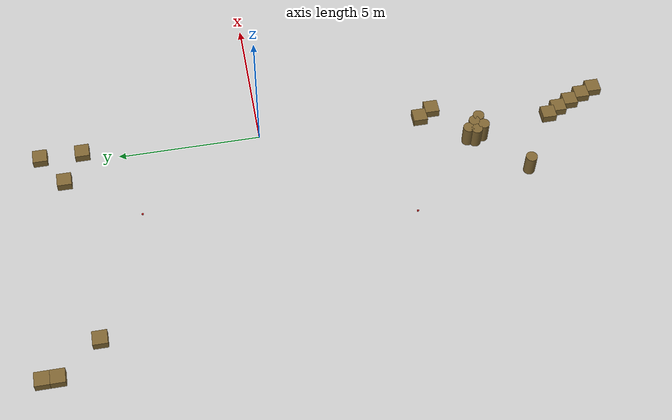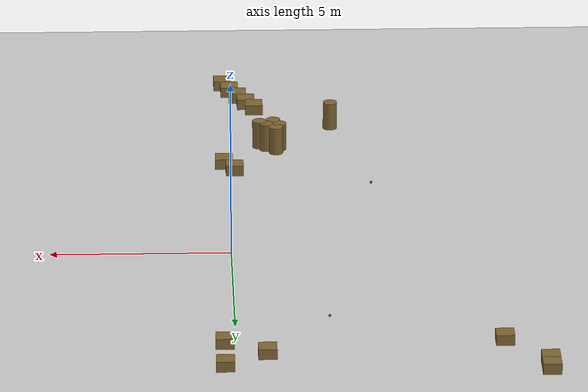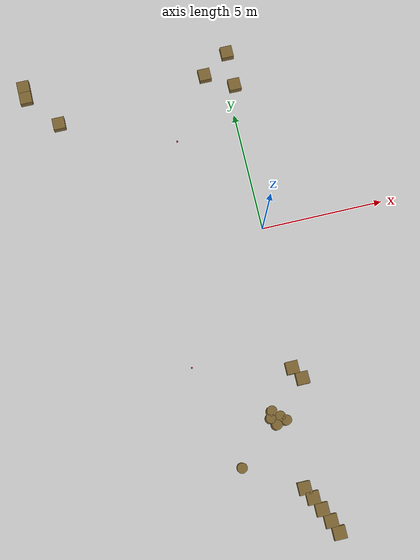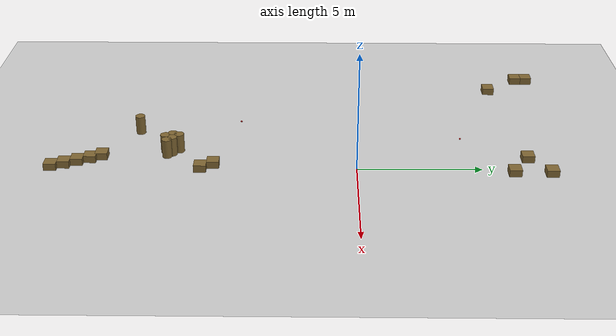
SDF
<sdf version="1.6">
 <world name="default">
  <model name="ground_plane">
   <static>1</static>
   <link name="link">
    <collision name="collision">
     <geometry><plane><normal>0 0 1</normal><size>100 100</size></plane></geometry>
     <surface><friction><ode><mu>100</mu><mu2>50</mu2></ode></friction></surface>
    </collision>
    <visual name="visual">
     <cast_shadows>0</cast_shadows>
     <geometry><plane><normal>0 0 1</normal><size>100 100</size></plane></geometry>
     <material>
      <script><uri>file://media/materials/scripts/gazebo.material</uri><name>Gazebo/Grey</name></script>
     </material>
    </visual>
   </link>
  </model>
  <model name="mini_box_clone_clone_0">
   <link name="link">
    <inertial>
     <mass>1</mass>
     <inertia>
      <ixx>0.166667</ixx>
      <ixy>0</ixy>
      <ixz>0</ixz>
      <iyy>0.166667</iyy>
      <iyz>0</iyz>
      <izz>0.166667</izz>
     </inertia>
    </inertial>
    <visual name="visual">
     <geometry><box><size>0.5 0.5 0.3</size></box></geometry>
     <material>
      <script><name>Gazebo/Grey</name><uri>file://media/materials/scripts/gazebo.material</uri></script>
      <shader type="vertex"><normal_map>__default__</normal_map></shader>
      <ambient>0.5 0.4 0.2 1</ambient>
      <diffuse>0.7 0.7 0.7 1</diffuse>
      <specular>0.01 0.01 0.01 1</specular>
      <emissive>0 0 0 1</emissive>
     </material>
    </visual>
    <collision name="collision">
     <geometry><box><size>0.5 0.5 0.3</size></box></geometry>
     <surface>
      <friction>
       <ode><mu>1</mu><mu2>1</mu2><fdir1>0 0 0</fdir1><slip1>0</slip1><slip2>0</slip2></ode>
       <torsional>
        <coefficient>1</coefficient>
        <patch_radius>0</patch_radius>
        <surface_radius>0</surface_radius>
        <use_patch_radius>1</use_patch_radius>
        <ode><slip>0</slip></ode>
       </torsional>
      </friction>
      <bounce><restitution_coefficient>0</restitution_coefficient><threshold>1e+06</threshold></bounce>
      <contact>
       <collide_without_contact>0</collide_without_contact>
       <collide_without_contact_bitmask>1</collide_without_contact_bitmask>
       <collide_bitmask>1</collide_bitmask>
       <ode>
        <soft_cfm>0</soft_cfm>
        <soft_erp>0.2</soft_erp>
        <kp>1e+13</kp>
        <kd>1</kd>
        <max_vel>0.01</max_vel>
        <min_depth>0</min_depth>
       </ode>
       <bullet>
        <split_impulse>1</split_impulse>
        <split_impulse_penetration_threshold>-0.01</split_impulse_penetration_threshold>
        <soft_cfm>0</soft_cfm>
        <soft_erp>0.2</soft_erp>
        <kp>1e+13</kp>
        <kd>1</kd>
       </bullet>
      </contact>
     </surface>
    </collision>
   </link>
   <static>1</static>
   <pose>0.311896 7.72531 0.15 0 -0 0</pose>
  </model>
  <model name="mini_box_clone_clone_2">
   <link name="link">
    <inertial>
     <mass>1</mass>
     <inertia>
      <ixx>0.166667</ixx>
      <ixy>0</ixy>
      <ixz>0</ixz>
      <iyy>0.166667</iyy>
      <iyz>0</iyz>
      <izz>0.166667</izz>
     </inertia>
    </inertial>
    <visual name="visual">
     <geometry><box><size>0.5 0.5 0.3</size></box></geometry>
     <material>
      <script><name>Gazebo/Grey</name><uri>file://media/materials/scripts/gazebo.material</uri></script>
      <shader type="vertex"><normal_map>__default__</normal_map></shader>
      <ambient>0.5 0.4 0.2 1</ambient>
      <diffuse>0.7 0.7 0.7 1</diffuse>
      <specular>0.01 0.01 0.01 1</specular>
      <emissive>0 0 0 1</emissive>
     </material>
    </visual>
    <collision name="collision">
     <geometry><box><size>0.5 0.5 0.3</size></box></geometry>
     <surface>
      <friction>
       <ode><mu>1</mu><mu2>1</mu2><fdir1>0 0 0</fdir1><slip1>0</slip1><slip2>0</slip2></ode>
       <torsional>
        <coefficient>1</coefficient>
        <patch_radius>0</patch_radius>
        <surface_radius>0</surface_radius>
        <use_patch_radius>1</use_patch_radius>
        <ode><slip>0</slip></ode>
       </torsional>
      </friction>
      <bounce><restitution_coefficient>0</restitution_coefficient><threshold>1e+06</threshold></bounce>
      <contact>
       <collide_without_contact>0</collide_without_contact>
       <collide_without_contact_bitmask>1</collide_without_contact_bitmask>
       <collide_bitmask>1</collide_bitmask>
       <ode>
        <soft_cfm>0</soft_cfm>
        <soft_erp>0.2</soft_erp>
        <kp>1e+13</kp>
        <kd>1</kd>
        <max_vel>0.01</max_vel>
        <min_depth>0</min_depth>
       </ode>
       <bullet>
        <split_impulse>1</split_impulse>
        <split_impulse_penetration_threshold>-0.01</split_impulse_penetration_threshold>
        <soft_cfm>0</soft_cfm>
        <soft_erp>0.2</soft_erp>
        <kp>1e+13</kp>
        <kd>1</kd>
       </bullet>
      </contact>
     </surface>
    </collision>
   </link>
   <static>1</static>
   <pose>-0.824684 6.94928 0.15 0 -0 0</pose>
  </model>
  <model name="mini_box_clone_clone_3">
   <link name="link">
    <inertial>
     <mass>1</mass>
     <inertia>
      <ixx>0.166667</ixx>
      <ixy>0</ixy>
      <ixz>0</ixz>
      <iyy>0.166667</iyy>
      <iyz>0</iyz>
      <izz>0.166667</izz>
     </inertia>
    </inertial>
    <visual name="visual">
     <geometry><box><size>0.5 0.5 0.3</size></box></geometry>
     <material>
      <script><name>Gazebo/Grey</name><uri>file://media/materials/scripts/gazebo.material</uri></script>
      <shader type="vertex"><normal_map>__default__</normal_map></shader>
      <ambient>0.5 0.4 0.2 1</ambient>
      <diffuse>0.7 0.7 0.7 1</diffuse>
      <specular>0.01 0.01 0.01 1</specular>
      <emissive>0 0 0 1</emissive>
     </material>
    </visual>
    <collision name="collision">
     <geometry><box><size>0.5 0.5 0.3</size></box></geometry>
     <surface>
      <friction>
       <ode><mu>1</mu><mu2>1</mu2><fdir1>0 0 0</fdir1><slip1>0</slip1><slip2>0</slip2></ode>
       <torsional>
        <coefficient>1</coefficient>
        <patch_radius>0</patch_radius>
        <surface_radius>0</surface_radius>
        <use_patch_radius>1</use_patch_radius>
        <ode><slip>0</slip></ode>
       </torsional>
      </friction>
      <bounce><restitution_coefficient>0</restitution_coefficient><threshold>1e+06</threshold></bounce>
      <contact>
       <collide_without_contact>0</collide_without_contact>
       <collide_without_contact_bitmask>1</collide_without_contact_bitmask>
       <collide_bitmask>1</collide_bitmask>
       <ode>
        <soft_cfm>0</soft_cfm>
        <soft_erp>0.2</soft_erp>
        <kp>1e+13</kp>
        <kd>1</kd>
        <max_vel>0.01</max_vel>
        <min_depth>0</min_depth>
       </ode>
       <bullet>
        <split_impulse>1</split_impulse>
        <split_impulse_penetration_threshold>-0.01</split_impulse_penetration_threshold>
        <soft_cfm>0</soft_cfm>
        <soft_erp>0.2</soft_erp>
        <kp>1e+13</kp>
        <kd>1</kd>
       </bullet>
      </contact>
     </surface>
    </collision>
   </link>
   <static>1</static>
   <pose>0.298756 6.25504 0.15 0 -0 0</pose>
  </model>
  <model name="mini_box_clone_clone_2_clone">
   <link name="link">
    <inertial>
     <mass>1</mass>
     <inertia>
      <ixx>0.166667</ixx>
      <ixy>0</ixy>
      <ixz>0</ixz>
      <iyy>0.166667</iyy>
      <iyz>0</iyz>
      <izz>0.166667</izz>
     </inertia>
    </inertial>
    <visual name="visual">
     <geometry><box><size>0.5 0.5 0.3</size></box></geometry>
     <material>
      <script><name>Gazebo/Grey</name><uri>file://media/materials/scripts/gazebo.material</uri></script>
      <shader type="vertex"><normal_map>__default__</normal_map></shader>
      <ambient>0.5 0.4 0.2 1</ambient>
      <diffuse>0.7 0.7 0.7 1</diffuse>
      <specular>0.01 0.01 0.01 1</specular>
      <emissive>0 0 0 1</emissive>
     </material>
    </visual>
    <collision name="collision">
     <geometry><box><size>0.5 0.5 0.3</size></box></geometry>
     <surface>
      <friction>
       <ode><mu>1</mu><mu2>1</mu2><fdir1>0 0 0</fdir1><slip1>0</slip1><slip2>0</slip2></ode>
       <torsional>
        <coefficient>1</coefficient>
        <patch_radius>0</patch_radius>
        <surface_radius>0</surface_radius>
        <use_patch_radius>1</use_patch_radius>
        <ode><slip>0</slip></ode>
       </torsional>
      </friction>
      <bounce><restitution_coefficient>0</restitution_coefficient><threshold>1e+06</threshold></bounce>
      <contact>
       <collide_without_contact>0</collide_without_contact>
       <collide_without_contact_bitmask>1</collide_without_contact_bitmask>
       <collide_bitmask>1</collide_bitmask>
       <ode>
        <soft_cfm>0</soft_cfm>
        <soft_erp>0.2</soft_erp>
        <kp>1e+13</kp>
        <kd>1</kd>
        <max_vel>0.01</max_vel>
        <min_depth>0</min_depth>
       </ode>
       <bullet>
        <split_impulse>1</split_impulse>
        <split_impulse_penetration_threshold>-0.01</split_impulse_penetration_threshold>
        <soft_cfm>0</soft_cfm>
        <soft_erp>0.2</soft_erp>
        <kp>1e+13</kp>
        <kd>1</kd>
       </bullet>
      </contact>
     </surface>
    </collision>
   </link>
   <static>1</static>
   <pose>-7.18928 6.21457 0.15 0 -0 0</pose>
  </model>
  <model name="target_1">
   <link name="link">
    <pose>0 0 0.0375 0 -0 0</pose>
    <inertial>
     <mass>0.1467</mass>
     <inertia>
      <ixx>8.25187e-05</ixx>
      <ixy>0</ixy>
      <ixz>0</ixz>
      <iyy>8.25187e-05</iyy>
      <iyz>0</iyz>
      <izz>8.25187e-05</izz>
     </inertia>
    </inertial>
    <velocity_decay><linear>0</linear><angular>0.005</angular></velocity_decay>
    <visual name="visual">
     <geometry><sphere><radius>0.0375</radius></sphere></geometry>
     <material>
      <script><uri>file://media/materials/scripts/gazebo.material</uri><name>Gazebo/Red</name></script>
      <shader type="pixel"/>
     </material>
    </visual>
    <collision name="collision">
     <geometry><sphere><radius>0.0375</radius></sphere></geometry>
     <surface>
      <friction>
       <ode><mu>1</mu><mu2>1</mu2><fdir1>0 0 0</fdir1><slip1>0</slip1><slip2>0</slip2></ode>
       <torsional>
        <coefficient>1</coefficient>
        <patch_radius>0</patch_radius>
        <surface_radius>0.01</surface_radius>
        <use_patch_radius>0</use_patch_radius>
        <ode><slip>0</slip></ode>
       </torsional>
      </friction>
      <bounce><restitution_coefficient>0</restitution_coefficient><threshold>1e+06</threshold></bounce>
      <contact>
       <collide_without_contact>0</collide_without_contact>
       <collide_without_contact_bitmask>1</collide_without_contact_bitmask>
       <collide_bitmask>1</collide_bitmask>
       <ode>
        <soft_cfm>0</soft_cfm>
        <soft_erp>0.2</soft_erp>
        <kp>100000</kp>
        <kd>100</kd>
        <max_vel>100</max_vel>
        <min_depth>0.001</min_depth>
       </ode>
       <bullet>
        <split_impulse>1</split_impulse>
        <split_impulse_penetration_threshold>-0.01</split_impulse_penetration_threshold>
        <soft_cfm>0</soft_cfm>
        <soft_erp>0.2</soft_erp>
        <kp>100000</kp>
        <kd>100</kd>
       </bullet>
      </contact>
     </surface>
    </collision>
   </link>
   <static>0</static>
   <pose>-2.56757 4.41406 -0.001014 0 -0 0</pose>
  </model>
  <model name="target_4">
   <link name="link">
    <pose>0 0 0.0375 0 -0 0</pose>
    <inertial>
     <mass>0.1467</mass>
     <inertia>
      <ixx>8.25187e-05</ixx>
      <ixy>0</ixy>
      <ixz>0</ixz>
      <iyy>8.25187e-05</iyy>
      <iyz>0</iyz>
      <izz>8.25187e-05</izz>
     </inertia>
    </inertial>
    <velocity_decay><linear>0</linear><angular>0.005</angular></velocity_decay>
    <visual name="visual">
     <geometry><sphere><radius>0.0375</radius></sphere></geometry>
     <material>
      <script><uri>file://media/materials/scripts/gazebo.material</uri><name>Gazebo/Red</name></script>
      <shader type="pixel"/>
     </material>
    </visual>
    <collision name="collision">
     <geometry><sphere><radius>0.0375</radius></sphere></geometry>
     <surface>
      <friction>
       <ode><mu>1</mu><mu2>1</mu2><fdir1>0 0 0</fdir1><slip1>0</slip1><slip2>0</slip2></ode>
       <torsional>
        <coefficient>1</coefficient>
        <patch_radius>0</patch_radius>
        <surface_radius>0.01</surface_radius>
        <use_patch_radius>0</use_patch_radius>
        <ode><slip>0</slip></ode>
       </torsional>
      </friction>
      <bounce><restitution_coefficient>0</restitution_coefficient><threshold>1e+06</threshold></bounce>
      <contact>
       <collide_without_contact>0</collide_without_contact>
       <collide_without_contact_bitmask>1</collide_without_contact_bitmask>
       <collide_bitmask>1</collide_bitmask>
       <ode>
        <soft_cfm>0</soft_cfm>
        <soft_erp>0.2</soft_erp>
        <kp>100000</kp>
        <kd>100</kd>
        <max_vel>100</max_vel>
        <min_depth>0.001</min_depth>
       </ode>
       <bullet>
        <split_impulse>1</split_impulse>
        <split_impulse_penetration_threshold>-0.01</split_impulse_penetration_threshold>
        <soft_cfm>0</soft_cfm>
        <soft_erp>0.2</soft_erp>
        <kp>100000</kp>
        <kd>100</kd>
       </bullet>
      </contact>
     </surface>
    </collision>
   </link>
   <static>0</static>
   <pose>-4.06717 -4.87999 -0.001014 0 -0 0</pose>
  </model>
  <model name="mini_box_clone_clone_3_clone_0_clone_0_clone_2">
   <link name="link">
    <inertial>
     <mass>1</mass>
     <inertia>
      <ixx>0.166667</ixx>
      <ixy>0</ixy>
      <ixz>0</ixz>
      <iyy>0.166667</iyy>
      <iyz>0</iyz>
      <izz>0.166667</izz>
     </inertia>
    </inertial>
    <visual name="visual">
     <geometry><box><size>0.5 0.5 0.3</size></box></geometry>
     <material>
      <script><name>Gazebo/Grey</name><uri>file://media/materials/scripts/gazebo.material</uri></script>
      <shader type="vertex"><normal_map>__default__</normal_map></shader>
      <ambient>0.5 0.4 0.2 1</ambient>
      <diffuse>0.7 0.7 0.7 1</diffuse>
      <specular>0.01 0.01 0.01 1</specular>
      <emissive>0 0 0 1</emissive>
     </material>
    </visual>
    <collision name="collision">
     <geometry><box><size>0.5 0.5 0.3</size></box></geometry>
     <surface>
      <friction>
       <ode><mu>1</mu><mu2>1</mu2><fdir1>0 0 0</fdir1><slip1>0</slip1><slip2>0</slip2></ode>
       <torsional>
        <coefficient>1</coefficient>
        <patch_radius>0</patch_radius>
        <surface_radius>0</surface_radius>
        <use_patch_radius>1</use_patch_radius>
        <ode><slip>0</slip></ode>
       </torsional>
      </friction>
      <bounce><restitution_coefficient>0</restitution_coefficient><threshold>1e+06</threshold></bounce>
      <contact>
       <collide_without_contact>0</collide_without_contact>
       <collide_without_contact_bitmask>1</collide_without_contact_bitmask>
       <collide_bitmask>1</collide_bitmask>
       <ode>
        <soft_cfm>0</soft_cfm>
        <soft_erp>0.2</soft_erp>
        <kp>1e+13</kp>
        <kd>1</kd>
        <max_vel>0.01</max_vel>
        <min_depth>0</min_depth>
       </ode>
       <bullet>
        <split_impulse>1</split_impulse>
        <split_impulse_penetration_threshold>-0.01</split_impulse_penetration_threshold>
        <soft_cfm>0</soft_cfm>
        <soft_erp>0.2</soft_erp>
        <kp>1e+13</kp>
        <kd>1</kd>
       </bullet>
      </contact>
     </surface>
    </collision>
   </link>
   <static>1</static>
   <pose>0.072178 -6.26601 0.15 0 -0 0</pose>
  </model>
  <model name="mini_box_clone_clone_3_clone_0_clone_0_clone_3">
   <link name="link">
    <inertial>
     <mass>1</mass>
     <inertia>
      <ixx>0.166667</ixx>
      <ixy>0</ixy>
      <ixz>0</ixz>
      <iyy>0.166667</iyy>
      <iyz>0</iyz>
      <izz>0.166667</izz>
     </inertia>
    </inertial>
    <visual name="visual">
     <geometry><box><size>0.5 0.5 0.3</size></box></geometry>
     <material>
      <script><name>Gazebo/Grey</name><uri>file://media/materials/scripts/gazebo.material</uri></script>
      <shader type="vertex"><normal_map>__default__</normal_map></shader>
      <ambient>0.5 0.4 0.2 1</ambient>
      <diffuse>0.7 0.7 0.7 1</diffuse>
      <specular>0.01 0.01 0.01 1</specular>
      <emissive>0 0 0 1</emissive>
     </material>
    </visual>
    <collision name="collision">
     <geometry><box><size>0.5 0.5 0.3</size></box></geometry>
     <surface>
      <friction>
       <ode><mu>1</mu><mu2>1</mu2><fdir1>0 0 0</fdir1><slip1>0</slip1><slip2>0</slip2></ode>
       <torsional>
        <coefficient>1</coefficient>
        <patch_radius>0</patch_radius>
        <surface_radius>0</surface_radius>
        <use_patch_radius>1</use_patch_radius>
        <ode><slip>0</slip></ode>
       </torsional>
      </friction>
      <bounce><restitution_coefficient>0</restitution_coefficient><threshold>1e+06</threshold></bounce>
      <contact>
       <collide_without_contact>0</collide_without_contact>
       <collide_without_contact_bitmask>1</collide_without_contact_bitmask>
       <collide_bitmask>1</collide_bitmask>
       <ode>
        <soft_cfm>0</soft_cfm>
        <soft_erp>0.2</soft_erp>
        <kp>1e+13</kp>
        <kd>1</kd>
        <max_vel>0.01</max_vel>
        <min_depth>0</min_depth>
       </ode>
       <bullet>
        <split_impulse>1</split_impulse>
        <split_impulse_penetration_threshold>-0.01</split_impulse_penetration_threshold>
        <soft_cfm>0</soft_cfm>
        <soft_erp>0.2</soft_erp>
        <kp>1e+13</kp>
        <kd>1</kd>
       </bullet>
      </contact>
     </surface>
    </collision>
   </link>
   <static>1</static>
   <pose>-0.221969 -5.77563 0.15 0 -0 0</pose>
  </model>
  <model name="mini_box_clone_clone_3_clone_0_clone_0_clone_4">
   <link name="link">
    <inertial>
     <mass>1</mass>
     <inertia>
      <ixx>0.166667</ixx>
      <ixy>0</ixy>
      <ixz>0</ixz>
      <iyy>0.166667</iyy>
      <iyz>0</iyz>
      <izz>0.166667</izz>
     </inertia>
    </inertial>
    <visual name="visual">
     <geometry><box><size>0.5 0.5 0.3</size></box></geometry>
     <material>
      <script><name>Gazebo/Grey</name><uri>file://media/materials/scripts/gazebo.material</uri></script>
      <shader type="vertex"><normal_map>__default__</normal_map></shader>
      <ambient>0.5 0.4 0.2 1</ambient>
      <diffuse>0.7 0.7 0.7 1</diffuse>
      <specular>0.01 0.01 0.01 1</specular>
      <emissive>0 0 0 1</emissive>
     </material>
    </visual>
    <collision name="collision">
     <geometry><box><size>0.5 0.5 0.3</size></box></geometry>
     <surface>
      <friction>
       <ode><mu>1</mu><mu2>1</mu2><fdir1>0 0 0</fdir1><slip1>0</slip1><slip2>0</slip2></ode>
       <torsional>
        <coefficient>1</coefficient>
        <patch_radius>0</patch_radius>
        <surface_radius>0</surface_radius>
        <use_patch_radius>1</use_patch_radius>
        <ode><slip>0</slip></ode>
       </torsional>
      </friction>
      <bounce><restitution_coefficient>0</restitution_coefficient><threshold>1e+06</threshold></bounce>
      <contact>
       <collide_without_contact>0</collide_without_contact>
       <collide_without_contact_bitmask>1</collide_without_contact_bitmask>
       <collide_bitmask>1</collide_bitmask>
       <ode>
        <soft_cfm>0</soft_cfm>
        <soft_erp>0.2</soft_erp>
        <kp>1e+13</kp>
        <kd>1</kd>
        <max_vel>0.01</max_vel>
        <min_depth>0</min_depth>
       </ode>
       <bullet>
        <split_impulse>1</split_impulse>
        <split_impulse_penetration_threshold>-0.01</split_impulse_penetration_threshold>
        <soft_cfm>0</soft_cfm>
        <soft_erp>0.2</soft_erp>
        <kp>1e+13</kp>
        <kd>1</kd>
       </bullet>
      </contact>
     </surface>
    </collision>
   </link>
   <static>1</static>
   <pose>-0.876616 -10.3621 0.15 0 -0 0</pose>
  </model>
  <model name="mini_box_clone_clone_3_clone_0_clone_0_clone_5">
   <link name="link">
    <inertial>
     <mass>1</mass>
     <inertia>
      <ixx>0.166667</ixx>
      <ixy>0</ixy>
      <ixz>0</ixz>
      <iyy>0.166667</iyy>
      <iyz>0</iyz>
      <izz>0.166667</izz>
     </inertia>
    </inertial>
    <visual name="visual">
     <geometry><box><size>0.5 0.5 0.3</size></box></geometry>
     <material>
      <script><name>Gazebo/Grey</name><uri>file://media/materials/scripts/gazebo.material</uri></script>
      <shader type="vertex"><normal_map>__default__</normal_map></shader>
      <ambient>0.5 0.4 0.2 1</ambient>
      <diffuse>0.7 0.7 0.7 1</diffuse>
      <specular>0.01 0.01 0.01 1</specular>
      <emissive>0 0 0 1</emissive>
     </material>
    </visual>
    <collision name="collision">
     <geometry><box><size>0.5 0.5 0.3</size></box></geometry>
     <surface>
      <friction>
       <ode><mu>1</mu><mu2>1</mu2><fdir1>0 0 0</fdir1><slip1>0</slip1><slip2>0</slip2></ode>
       <torsional>
        <coefficient>1</coefficient>
        <patch_radius>0</patch_radius>
        <surface_radius>0</surface_radius>
        <use_patch_radius>1</use_patch_radius>
        <ode><slip>0</slip></ode>
       </torsional>
      </friction>
      <bounce><restitution_coefficient>0</restitution_coefficient><threshold>1e+06</threshold></bounce>
      <contact>
       <collide_without_contact>0</collide_without_contact>
       <collide_without_contact_bitmask>1</collide_without_contact_bitmask>
       <collide_bitmask>1</collide_bitmask>
       <ode>
        <soft_cfm>0</soft_cfm>
        <soft_erp>0.2</soft_erp>
        <kp>1e+13</kp>
        <kd>1</kd>
        <max_vel>0.01</max_vel>
        <min_depth>0</min_depth>
       </ode>
       <bullet>
        <split_impulse>1</split_impulse>
        <split_impulse_penetration_threshold>-0.01</split_impulse_penetration_threshold>
        <soft_cfm>0</soft_cfm>
        <soft_erp>0.2</soft_erp>
        <kp>1e+13</kp>
        <kd>1</kd>
       </bullet>
      </contact>
     </surface>
    </collision>
   </link>
   <static>1</static>
   <pose>-0.64727 -10.7882 0.15 0 -0 0</pose>
  </model>
  <model name="mini_box_clone_clone_3_clone_0_clone_0_clone_6">
   <link name="link">
    <inertial>
     <mass>1</mass>
     <inertia>
      <ixx>0.166667</ixx>
      <ixy>0</ixy>
      <ixz>0</ixz>
      <iyy>0.166667</iyy>
      <iyz>0</iyz>
      <izz>0.166667</izz>
     </inertia>
    </inertial>
    <visual name="visual">
     <geometry><box><size>0.5 0.5 0.3</size></box></geometry>
     <material>
      <script><name>Gazebo/Grey</name><uri>file://media/materials/scripts/gazebo.material</uri></script>
      <shader type="vertex"><normal_map>__default__</normal_map></shader>
      <ambient>0.5 0.4 0.2 1</ambient>
      <diffuse>0.7 0.7 0.7 1</diffuse>
      <specular>0.01 0.01 0.01 1</specular>
      <emissive>0 0 0 1</emissive>
     </material>
    </visual>
    <collision name="collision">
     <geometry><box><size>0.5 0.5 0.3</size></box></geometry>
     <surface>
      <friction>
       <ode><mu>1</mu><mu2>1</mu2><fdir1>0 0 0</fdir1><slip1>0</slip1><slip2>0</slip2></ode>
       <torsional>
        <coefficient>1</coefficient>
        <patch_radius>0</patch_radius>
        <surface_radius>0</surface_radius>
        <use_patch_radius>1</use_patch_radius>
        <ode><slip>0</slip></ode>
       </torsional>
      </friction>
      <bounce><restitution_coefficient>0</restitution_coefficient><threshold>1e+06</threshold></bounce>
      <contact>
       <collide_without_contact>0</collide_without_contact>
       <collide_without_contact_bitmask>1</collide_without_contact_bitmask>
       <collide_bitmask>1</collide_bitmask>
       <ode>
        <soft_cfm>0</soft_cfm>
        <soft_erp>0.2</soft_erp>
        <kp>1e+13</kp>
        <kd>1</kd>
        <max_vel>0.01</max_vel>
        <min_depth>0</min_depth>
       </ode>
       <bullet>
        <split_impulse>1</split_impulse>
        <split_impulse_penetration_threshold>-0.01</split_impulse_penetration_threshold>
        <soft_cfm>0</soft_cfm>
        <soft_erp>0.2</soft_erp>
        <kp>1e+13</kp>
        <kd>1</kd>
       </bullet>
      </contact>
     </surface>
    </collision>
   </link>
   <static>1</static>
   <pose>-0.417818 -11.2795 0.15 0 -0 0</pose>
  </model>
  <model name="mini_box_clone_clone_3_clone_0_clone_0_clone_7">
   <link name="link">
    <inertial>
     <mass>1</mass>
     <inertia>
      <ixx>0.166667</ixx>
      <ixy>0</ixy>
      <ixz>0</ixz>
      <iyy>0.166667</iyy>
      <iyz>0</iyz>
      <izz>0.166667</izz>
     </inertia>
    </inertial>
    <visual name="visual">
     <geometry><box><size>0.5 0.5 0.3</size></box></geometry>
     <material>
      <script><name>Gazebo/Grey</name><uri>file://media/materials/scripts/gazebo.material</uri></script>
      <shader type="vertex"><normal_map>__default__</normal_map></shader>
      <ambient>0.5 0.4 0.2 1</ambient>
      <diffuse>0.7 0.7 0.7 1</diffuse>
      <specular>0.01 0.01 0.01 1</specular>
      <emissive>0 0 0 1</emissive>
     </material>
    </visual>
    <collision name="collision">
     <geometry><box><size>0.5 0.5 0.3</size></box></geometry>
     <surface>
      <friction>
       <ode><mu>1</mu><mu2>1</mu2><fdir1>0 0 0</fdir1><slip1>0</slip1><slip2>0</slip2></ode>
       <torsional>
        <coefficient>1</coefficient>
        <patch_radius>0</patch_radius>
        <surface_radius>0</surface_radius>
        <use_patch_radius>1</use_patch_radius>
        <ode><slip>0</slip></ode>
       </torsional>
      </friction>
      <bounce><restitution_coefficient>0</restitution_coefficient><threshold>1e+06</threshold></bounce>
      <contact>
       <collide_without_contact>0</collide_without_contact>
       <collide_without_contact_bitmask>1</collide_without_contact_bitmask>
       <collide_bitmask>1</collide_bitmask>
       <ode>
        <soft_cfm>0</soft_cfm>
        <soft_erp>0.2</soft_erp>
        <kp>1e+13</kp>
        <kd>1</kd>
        <max_vel>0.01</max_vel>
        <min_depth>0</min_depth>
       </ode>
       <bullet>
        <split_impulse>1</split_impulse>
        <split_impulse_penetration_threshold>-0.01</split_impulse_penetration_threshold>
        <soft_cfm>0</soft_cfm>
        <soft_erp>0.2</soft_erp>
        <kp>1e+13</kp>
        <kd>1</kd>
       </bullet>
      </contact>
     </surface>
    </collision>
   </link>
   <static>1</static>
   <pose>-0.188472 -11.771 0.15 0 -0 0</pose>
  </model>
  <model name="mini_box_clone_clone_3_clone_0_clone_0_clone_8">
   <link name="link">
    <inertial>
     <mass>1</mass>
     <inertia>
      <ixx>0.166667</ixx>
      <ixy>0</ixy>
      <ixz>0</ixz>
      <iyy>0.166667</iyy>
      <iyz>0</iyz>
      <izz>0.166667</izz>
     </inertia>
    </inertial>
    <visual name="visual">
     <geometry><box><size>0.5 0.5 0.3</size></box></geometry>
     <material>
      <script><name>Gazebo/Grey</name><uri>file://media/materials/scripts/gazebo.material</uri></script>
      <shader type="vertex"><normal_map>__default__</normal_map></shader>
      <ambient>0.5 0.4 0.2 1</ambient>
      <diffuse>0.7 0.7 0.7 1</diffuse>
      <specular>0.01 0.01 0.01 1</specular>
      <emissive>0 0 0 1</emissive>
     </material>
    </visual>
    <collision name="collision">
     <geometry><box><size>0.5 0.5 0.3</size></box></geometry>
     <surface>
      <friction>
       <ode><mu>1</mu><mu2>1</mu2><fdir1>0 0 0</fdir1><slip1>0</slip1><slip2>0</slip2></ode>
       <torsional>
        <coefficient>1</coefficient>
        <patch_radius>0</patch_radius>
        <surface_radius>0</surface_radius>
        <use_patch_radius>1</use_patch_radius>
        <ode><slip>0</slip></ode>
       </torsional>
      </friction>
      <bounce><restitution_coefficient>0</restitution_coefficient><threshold>1e+06</threshold></bounce>
      <contact>
       <collide_without_contact>0</collide_without_contact>
       <collide_without_contact_bitmask>1</collide_without_contact_bitmask>
       <collide_bitmask>1</collide_bitmask>
       <ode>
        <soft_cfm>0</soft_cfm>
        <soft_erp>0.2</soft_erp>
        <kp>1e+13</kp>
        <kd>1</kd>
        <max_vel>0.01</max_vel>
        <min_depth>0</min_depth>
       </ode>
       <bullet>
        <split_impulse>1</split_impulse>
        <split_impulse_penetration_threshold>-0.01</split_impulse_penetration_threshold>
        <soft_cfm>0</soft_cfm>
        <soft_erp>0.2</soft_erp>
        <kp>1e+13</kp>
        <kd>1</kd>
       </bullet>
      </contact>
     </surface>
    </collision>
   </link>
   <static>1</static>
   <pose>0.00799 -12.2624 0.15 0 -0 0</pose>
  </model>
  <model name="mini_cylinder_0_clone_0_clone_0_clone_3">
   <link name="link">
    <inertial>
     <mass>1</mass>
     <inertia><ixx>0.145833</ixx><ixy>0</ixy><ixz>0</ixz><iyy>0.145833</iyy><iyz>0</iyz><izz>0.125</izz></inertia>
    </inertial>
    <visual name="visual">
     <geometry><cylinder><radius>0.2</radius><length>0.8</length></cylinder></geometry>
     <material>
      <script><name>Gazebo/Grey</name><uri>file://media/materials/scripts/gazebo.material</uri></script>
      <shader type="vertex"><normal_map>__default__</normal_map></shader>
      <ambient>0.5 0.4 0.2 1</ambient>
      <diffuse>0.7 0.7 0.7 1</diffuse>
      <specular>0.01 0.01 0.01 1</specular>
      <emissive>0 0 0 1</emissive>
     </material>
    </visual>
    <collision name="collision">
     <geometry><cylinder><radius>0.2</radius><length>0.8</length></cylinder></geometry>
     <surface>
      <friction>
       <ode><mu>1</mu><mu2>1</mu2><fdir1>0 0 0</fdir1><slip1>0</slip1><slip2>0</slip2></ode>
       <torsional>
        <coefficient>1</coefficient>
        <patch_radius>0</patch_radius>
        <surface_radius>0</surface_radius>
        <use_patch_radius>1</use_patch_radius>
        <ode><slip>0</slip></ode>
       </torsional>
      </friction>
      <bounce><restitution_coefficient>0</restitution_coefficient><threshold>1e+06</threshold></bounce>
      <contact>
       <collide_without_contact>0</collide_without_contact>
       <collide_without_contact_bitmask>1</collide_without_contact_bitmask>
       <collide_bitmask>1</collide_bitmask>
       <ode>
        <soft_cfm>0</soft_cfm>
        <soft_erp>0.2</soft_erp>
        <kp>1e+13</kp>
        <kd>1</kd>
        <max_vel>0.01</max_vel>
        <min_depth>0</min_depth>
       </ode>
       <bullet>
        <split_impulse>1</split_impulse>
        <split_impulse_penetration_threshold>-0.01</split_impulse_penetration_threshold>
        <soft_cfm>0</soft_cfm>
        <soft_erp>0.2</soft_erp>
        <kp>1e+13</kp>
        <kd>1</kd>
       </bullet>
      </contact>
     </surface>
    </collision>
   </link>
   <static>1</static>
   <pose>-0.974742 -7.7083 0.4 0 -0 0</pose>
  </model>
  <model name="mini_cylinder_0_clone_0_clone_0_clone_4">
   <link name="link">
    <inertial>
     <mass>1</mass>
     <inertia><ixx>0.145833</ixx><ixy>0</ixy><ixz>0</ixz><iyy>0.145833</iyy><iyz>0</iyz><izz>0.125</izz></inertia>
    </inertial>
    <visual name="visual">
     <geometry><cylinder><radius>0.2</radius><length>0.8</length></cylinder></geometry>
     <material>
      <script><name>Gazebo/Grey</name><uri>file://media/materials/scripts/gazebo.material</uri></script>
      <shader type="vertex"><normal_map>__default__</normal_map></shader>
      <ambient>0.5 0.4 0.2 1</ambient>
      <diffuse>0.7 0.7 0.7 1</diffuse>
      <specular>0.01 0.01 0.01 1</specular>
      <emissive>0 0 0 1</emissive>
     </material>
    </visual>
    <collision name="collision">
     <geometry><cylinder><radius>0.2</radius><length>0.8</length></cylinder></geometry>
     <surface>
      <friction>
       <ode><mu>1</mu><mu2>1</mu2><fdir1>0 0 0</fdir1><slip1>0</slip1><slip2>0</slip2></ode>
       <torsional>
        <coefficient>1</coefficient>
        <patch_radius>0</patch_radius>
        <surface_radius>0</surface_radius>
        <use_patch_radius>1</use_patch_radius>
        <ode><slip>0</slip></ode>
       </torsional>
      </friction>
      <bounce><restitution_coefficient>0</restitution_coefficient><threshold>1e+06</threshold></bounce>
      <contact>
       <collide_without_contact>0</collide_without_contact>
       <collide_without_contact_bitmask>1</collide_without_contact_bitmask>
       <collide_bitmask>1</collide_bitmask>
       <ode>
        <soft_cfm>0</soft_cfm>
        <soft_erp>0.2</soft_erp>
        <kp>1e+13</kp>
        <kd>1</kd>
        <max_vel>0.01</max_vel>
        <min_depth>0</min_depth>
       </ode>
       <bullet>
        <split_impulse>1</split_impulse>
        <split_impulse_penetration_threshold>-0.01</split_impulse_penetration_threshold>
        <soft_cfm>0</soft_cfm>
        <soft_erp>0.2</soft_erp>
        <kp>1e+13</kp>
        <kd>1</kd>
       </bullet>
      </contact>
     </surface>
    </collision>
   </link>
   <static>1</static>
   <pose>-1.17142 -7.51163 0.4 0 -0 0</pose>
  </model>
  <model name="mini_cylinder_0_clone_0_clone_0_clone_5">
   <link name="link">
    <inertial>
     <mass>1</mass>
     <inertia><ixx>0.145833</ixx><ixy>0</ixy><ixz>0</ixz><iyy>0.145833</iyy><iyz>0</iyz><izz>0.125</izz></inertia>
    </inertial>
    <visual name="visual">
     <geometry><cylinder><radius>0.2</radius><length>0.8</length></cylinder></geometry>
     <material>
      <script><name>Gazebo/Grey</name><uri>file://media/materials/scripts/gazebo.material</uri></script>
      <shader type="vertex"><normal_map>__default__</normal_map></shader>
      <ambient>0.5 0.4 0.2 1</ambient>
      <diffuse>0.7 0.7 0.7 1</diffuse>
      <specular>0.01 0.01 0.01 1</specular>
      <emissive>0 0 0 1</emissive>
     </material>
    </visual>
    <collision name="collision">
     <geometry><cylinder><radius>0.2</radius><length>0.8</length></cylinder></geometry>
     <surface>
      <friction>
       <ode><mu>1</mu><mu2>1</mu2><fdir1>0 0 0</fdir1><slip1>0</slip1><slip2>0</slip2></ode>
       <torsional>
        <coefficient>1</coefficient>
        <patch_radius>0</patch_radius>
        <surface_radius>0</surface_radius>
        <use_patch_radius>1</use_patch_radius>
        <ode><slip>0</slip></ode>
       </torsional>
      </friction>
      <bounce><restitution_coefficient>0</restitution_coefficient><threshold>1e+06</threshold></bounce>
      <contact>
       <collide_without_contact>0</collide_without_contact>
       <collide_without_contact_bitmask>1</collide_without_contact_bitmask>
       <collide_bitmask>1</collide_bitmask>
       <ode>
        <soft_cfm>0</soft_cfm>
        <soft_erp>0.2</soft_erp>
        <kp>1e+13</kp>
        <kd>1</kd>
        <max_vel>0.01</max_vel>
        <min_depth>0</min_depth>
       </ode>
       <bullet>
        <split_impulse>1</split_impulse>
        <split_impulse_penetration_threshold>-0.01</split_impulse_penetration_threshold>
        <soft_cfm>0</soft_cfm>
        <soft_erp>0.2</soft_erp>
        <kp>1e+13</kp>
        <kd>1</kd>
       </bullet>
      </contact>
     </surface>
    </collision>
   </link>
   <static>1</static>
   <pose>-1.36798 -7.80664 0.4 0 -0 0</pose>
  </model>
  <model name="mini_cylinder_0_clone_0_clone_0_clone_6">
   <link name="link">
    <inertial>
     <mass>1</mass>
     <inertia><ixx>0.145833</ixx><ixy>0</ixy><ixz>0</ixz><iyy>0.145833</iyy><iyz>0</iyz><izz>0.125</izz></inertia>
    </inertial>
    <visual name="visual">
     <geometry><cylinder><radius>0.2</radius><length>0.8</length></cylinder></geometry>
     <material>
      <script><name>Gazebo/Grey</name><uri>file://media/materials/scripts/gazebo.material</uri></script>
      <shader type="vertex"><normal_map>__default__</normal_map></shader>
      <ambient>0.5 0.4 0.2 1</ambient>
      <diffuse>0.7 0.7 0.7 1</diffuse>
      <specular>0.01 0.01 0.01 1</specular>
      <emissive>0 0 0 1</emissive>
     </material>
    </visual>
    <collision name="collision">
     <geometry><cylinder><radius>0.2</radius><length>0.8</length></cylinder></geometry>
     <surface>
      <friction>
       <ode><mu>1</mu><mu2>1</mu2><fdir1>0 0 0</fdir1><slip1>0</slip1><slip2>0</slip2></ode>
       <torsional>
        <coefficient>1</coefficient>
        <patch_radius>0</patch_radius>
        <surface_radius>0</surface_radius>
        <use_patch_radius>1</use_patch_radius>
        <ode><slip>0</slip></ode>
       </torsional>
      </friction>
      <bounce><restitution_coefficient>0</restitution_coefficient><threshold>1e+06</threshold></bounce>
      <contact>
       <collide_without_contact>0</collide_without_contact>
       <collide_without_contact_bitmask>1</collide_without_contact_bitmask>
       <collide_bitmask>1</collide_bitmask>
       <ode>
        <soft_cfm>0</soft_cfm>
        <soft_erp>0.2</soft_erp>
        <kp>1e+13</kp>
        <kd>1</kd>
        <max_vel>0.01</max_vel>
        <min_depth>0</min_depth>
       </ode>
       <bullet>
        <split_impulse>1</split_impulse>
        <split_impulse_penetration_threshold>-0.01</split_impulse_penetration_threshold>
        <soft_cfm>0</soft_cfm>
        <soft_erp>0.2</soft_erp>
        <kp>1e+13</kp>
        <kd>1</kd>
       </bullet>
      </contact>
     </surface>
    </collision>
   </link>
   <static>1</static>
   <pose>-1.53944 -7.51163 0.4 0 -0 0</pose>
  </model>
  <model name="mini_cylinder_0_clone_0_clone_0_clone_7">
   <link name="link">
    <inertial>
     <mass>1</mass>
     <inertia><ixx>0.145833</ixx><ixy>0</ixy><ixz>0</ixz><iyy>0.145833</iyy><iyz>0</iyz><izz>0.125</izz></inertia>
    </inertial>
    <visual name="visual">
     <geometry><cylinder><radius>0.2</radius><length>0.8</length></cylinder></geometry>
     <material>
      <script><name>Gazebo/Grey</name><uri>file://media/materials/scripts/gazebo.material</uri></script>
      <shader type="vertex"><normal_map>__default__</normal_map></shader>
      <ambient>0.5 0.4 0.2 1</ambient>
      <diffuse>0.7 0.7 0.7 1</diffuse>
      <specular>0.01 0.01 0.01 1</specular>
      <emissive>0 0 0 1</emissive>
     </material>
    </visual>
    <collision name="collision">
     <geometry><cylinder><radius>0.2</radius><length>0.8</length></cylinder></geometry>
     <surface>
      <friction>
       <ode><mu>1</mu><mu2>1</mu2><fdir1>0 0 0</fdir1><slip1>0</slip1><slip2>0</slip2></ode>
       <torsional>
        <coefficient>1</coefficient>
        <patch_radius>0</patch_radius>
        <surface_radius>0</surface_radius>
        <use_patch_radius>1</use_patch_radius>
        <ode><slip>0</slip></ode>
       </torsional>
      </friction>
      <bounce><restitution_coefficient>0</restitution_coefficient><threshold>1e+06</threshold></bounce>
      <contact>
       <collide_without_contact>0</collide_without_contact>
       <collide_without_contact_bitmask>1</collide_without_contact_bitmask>
       <collide_bitmask>1</collide_bitmask>
       <ode>
        <soft_cfm>0</soft_cfm>
        <soft_erp>0.2</soft_erp>
        <kp>1e+13</kp>
        <kd>1</kd>
        <max_vel>0.01</max_vel>
        <min_depth>0</min_depth>
       </ode>
       <bullet>
        <split_impulse>1</split_impulse>
        <split_impulse_penetration_threshold>-0.01</split_impulse_penetration_threshold>
        <soft_cfm>0</soft_cfm>
        <soft_erp>0.2</soft_erp>
        <kp>1e+13</kp>
        <kd>1</kd>
       </bullet>
      </contact>
     </surface>
    </collision>
   </link>
   <static>1</static>
   <pose>-1.441 -7.24961 0.4 0 -0 0</pose>
  </model>
  <model name="mini_cylinder_0_clone_0_clone_0_clone_8">
   <link name="link">
    <inertial>
     <mass>1</mass>
     <inertia><ixx>0.145833</ixx><ixy>0</ixy><ixz>0</ixz><iyy>0.145833</iyy><iyz>0</iyz><izz>0.125</izz></inertia>
    </inertial>
    <visual name="visual">
     <geometry><cylinder><radius>0.2</radius><length>0.8</length></cylinder></geometry>
     <material>
      <script><name>Gazebo/Grey</name><uri>file://media/materials/scripts/gazebo.material</uri></script>
      <shader type="vertex"><normal_map>__default__</normal_map></shader>
      <ambient>0.5 0.4 0.2 1</ambient>
      <diffuse>0.7 0.7 0.7 1</diffuse>
      <specular>0.01 0.01 0.01 1</specular>
      <emissive>0 0 0 1</emissive>
     </material>
    </visual>
    <collision name="collision">
     <geometry><cylinder><radius>0.2</radius><length>0.8</length></cylinder></geometry>
     <surface>
      <friction>
       <ode><mu>1</mu><mu2>1</mu2><fdir1>0 0 0</fdir1><slip1>0</slip1><slip2>0</slip2></ode>
       <torsional>
        <coefficient>1</coefficient>
        <patch_radius>0</patch_radius>
        <surface_radius>0</surface_radius>
        <use_patch_radius>1</use_patch_radius>
        <ode><slip>0</slip></ode>
       </torsional>
      </friction>
      <bounce><restitution_coefficient>0</restitution_coefficient><threshold>1e+06</threshold></bounce>
      <contact>
       <collide_without_contact>0</collide_without_contact>
       <collide_without_contact_bitmask>1</collide_without_contact_bitmask>
       <collide_bitmask>1</collide_bitmask>
       <ode>
        <soft_cfm>0</soft_cfm>
        <soft_erp>0.2</soft_erp>
        <kp>1e+13</kp>
        <kd>1</kd>
        <max_vel>0.01</max_vel>
        <min_depth>0</min_depth>
       </ode>
       <bullet>
        <split_impulse>1</split_impulse>
        <split_impulse_penetration_threshold>-0.01</split_impulse_penetration_threshold>
        <soft_cfm>0</soft_cfm>
        <soft_erp>0.2</soft_erp>
        <kp>1e+13</kp>
        <kd>1</kd>
       </bullet>
      </contact>
     </surface>
    </collision>
   </link>
   <static>1</static>
   <pose>-3.04643 -9.08417 0.4 0 -0 0</pose>
  </model>
  <model name="mini_box_clone_clone_3_clone_0_clone_0_clone_11">
   <link name="link">
    <inertial>
     <mass>1</mass>
     <inertia>
      <ixx>0.166667</ixx>
      <ixy>0</ixy>
      <ixz>0</ixz>
      <iyy>0.166667</iyy>
      <iyz>0</iyz>
      <izz>0.166667</izz>
     </inertia>
    </inertial>
    <visual name="visual">
     <geometry><box><size>0.5 0.5 0.3</size></box></geometry>
     <material>
      <script><name>Gazebo/Grey</name><uri>file://media/materials/scripts/gazebo.material</uri></script>
      <shader type="vertex"><normal_map>__default__</normal_map></shader>
      <ambient>0.5 0.4 0.2 1</ambient>
      <diffuse>0.7 0.7 0.7 1</diffuse>
      <specular>0.01 0.01 0.01 1</specular>
      <emissive>0 0 0 1</emissive>
     </material>
    </visual>
    <collision name="collision">
     <geometry><box><size>0.5 0.5 0.3</size></box></geometry>
     <surface>
      <friction>
       <ode><mu>1</mu><mu2>1</mu2><fdir1>0 0 0</fdir1><slip1>0</slip1><slip2>0</slip2></ode>
       <torsional>
        <coefficient>1</coefficient>
        <patch_radius>0</patch_radius>
        <surface_radius>0</surface_radius>
        <use_patch_radius>1</use_patch_radius>
        <ode><slip>0</slip></ode>
       </torsional>
      </friction>
      <bounce><restitution_coefficient>0</restitution_coefficient><threshold>1e+06</threshold></bounce>
      <contact>
       <collide_without_contact>0</collide_without_contact>
       <collide_without_contact_bitmask>1</collide_without_contact_bitmask>
       <collide_bitmask>1</collide_bitmask>
       <ode>
        <soft_cfm>0</soft_cfm>
        <soft_erp>0.2</soft_erp>
        <kp>1e+13</kp>
        <kd>1</kd>
        <max_vel>0.01</max_vel>
        <min_depth>0</min_depth>
       </ode>
       <bullet>
        <split_impulse>1</split_impulse>
        <split_impulse_penetration_threshold>-0.01</split_impulse_penetration_threshold>
        <soft_cfm>0</soft_cfm>
        <soft_erp>0.2</soft_erp>
        <kp>1e+13</kp>
        <kd>1</kd>
       </bullet>
      </contact>
     </surface>
    </collision>
   </link>
   <static>1</static>
   <pose>-8.32128 8.11628 0.15 0 -0 0</pose>
  </model>
  <model name="mini_box_clone_clone_3_clone_0_clone_0_clone_12">
   <link name="link">
    <inertial>
     <mass>1</mass>
     <inertia>
      <ixx>0.166667</ixx>
      <ixy>0</ixy>
      <ixz>0</ixz>
      <iyy>0.166667</iyy>
      <iyz>0</iyz>
      <izz>0.166667</izz>
     </inertia>
    </inertial>
    <visual name="visual">
     <geometry><box><size>0.5 0.5 0.3</size></box></geometry>
     <material>
      <script><name>Gazebo/Grey</name><uri>file://media/materials/scripts/gazebo.material</uri></script>
      <shader type="vertex"><normal_map>__default__</normal_map></shader>
      <ambient>0.5 0.4 0.2 1</ambient>
      <diffuse>0.7 0.7 0.7 1</diffuse>
      <specular>0.01 0.01 0.01 1</specular>
      <emissive>0 0 0 1</emissive>
     </material>
    </visual>
    <collision name="collision">
     <geometry><box><size>0.5 0.5 0.3</size></box></geometry>
     <surface>
      <friction>
       <ode><mu>1</mu><mu2>1</mu2><fdir1>0 0 0</fdir1><slip1>0</slip1><slip2>0</slip2></ode>
       <torsional>
        <coefficient>1</coefficient>
        <patch_radius>0</patch_radius>
        <surface_radius>0</surface_radius>
        <use_patch_radius>1</use_patch_radius>
        <ode><slip>0</slip></ode>
       </torsional>
      </friction>
      <bounce><restitution_coefficient>0</restitution_coefficient><threshold>1e+06</threshold></bounce>
      <contact>
       <collide_without_contact>0</collide_without_contact>
       <collide_without_contact_bitmask>1</collide_without_contact_bitmask>
       <collide_bitmask>1</collide_bitmask>
       <ode>
        <soft_cfm>0</soft_cfm>
        <soft_erp>0.2</soft_erp>
        <kp>1e+13</kp>
        <kd>1</kd>
        <max_vel>0.01</max_vel>
        <min_depth>0</min_depth>
       </ode>
       <bullet>
        <split_impulse>1</split_impulse>
        <split_impulse_penetration_threshold>-0.01</split_impulse_penetration_threshold>
        <soft_cfm>0</soft_cfm>
        <soft_erp>0.2</soft_erp>
        <kp>1e+13</kp>
        <kd>1</kd>
       </bullet>
      </contact>
     </surface>
    </collision>
   </link>
   <static>1</static>
   <pose>-8.32128 7.62502 0.15 0 -0 0</pose>
  </model>
 </world>
</sdf>
